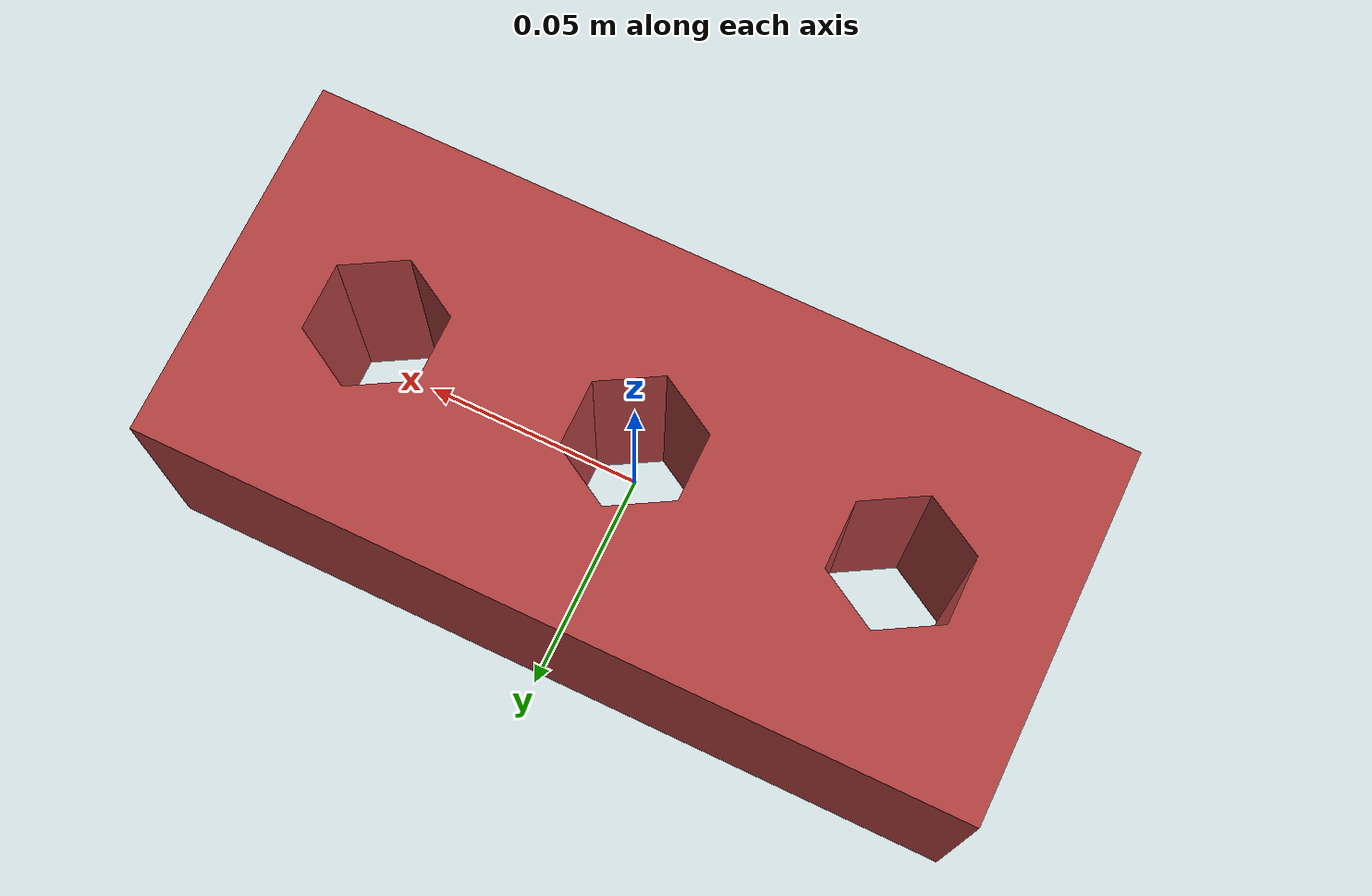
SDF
<?xml version="1.0" ?>
<sdf version='1.6'>
  <model name='Brick'>
    <static>true</static>
    <link name='Brick'>
      <pose frame=''>0 0 0 0 -0 0</pose>
      <inertial>
        <pose frame=''> 0 0 0.0 -0 0</pose>
        <mass>0.001</mass>
        <inertia>
          <ixx>0.000002</ixx>
          <ixy>0</ixy>
          <ixz>0</ixz>
          <iyy>0.000002</iyy>
          <iyz>0</iyz>
          <izz>0</izz>
        </inertia>
      </inertial>
      <collision name='Brick_collision'>
        <pose frame=''>0 0 0 1.5708 -0 0</pose>
        <geometry>
          <box>
            <size>0.192 0.062 0.086</size>
          </box>
        </geometry>
        <surface>
          <friction>
            <ode>
              <mu>10000000</mu>
              <mu2>10000000</mu2>
              <fdir1>0 0 1</fdir1>
              <slip1>1000</slip1>
              <slip2>1000</slip2>
            </ode>
          </friction>
          <contact>
            <ode>
              <kp>1000000000.000000</kp>
              <kd>100000000.00000</kd>
              <max_vel>20.000000</max_vel>
              <min_depth>0.0001</min_depth>
            </ode>
          </contact>
        </surface>
      </collision>
      <visual name='Brick_visual'>
        <pose frame=''>0 0 0 1.5708 -0 0</pose>
        <geometry>
          <mesh>
            <scale>1 1 1</scale>
            <uri>model://Brick/meshes/Brick_1.STL</uri>
          </mesh>
        </geometry>
        <material>
          <ambient>0.698 0.25 0.25 1</ambient>
          <diffuse>0.698 0.25 0.25 1</diffuse>
          <specular>0.1 0.1 0.1 1</specular>
          <emissive>0 0 0 0</emissive>
        </material>
      </visual>
    </link>
  </model>
</sdf>
